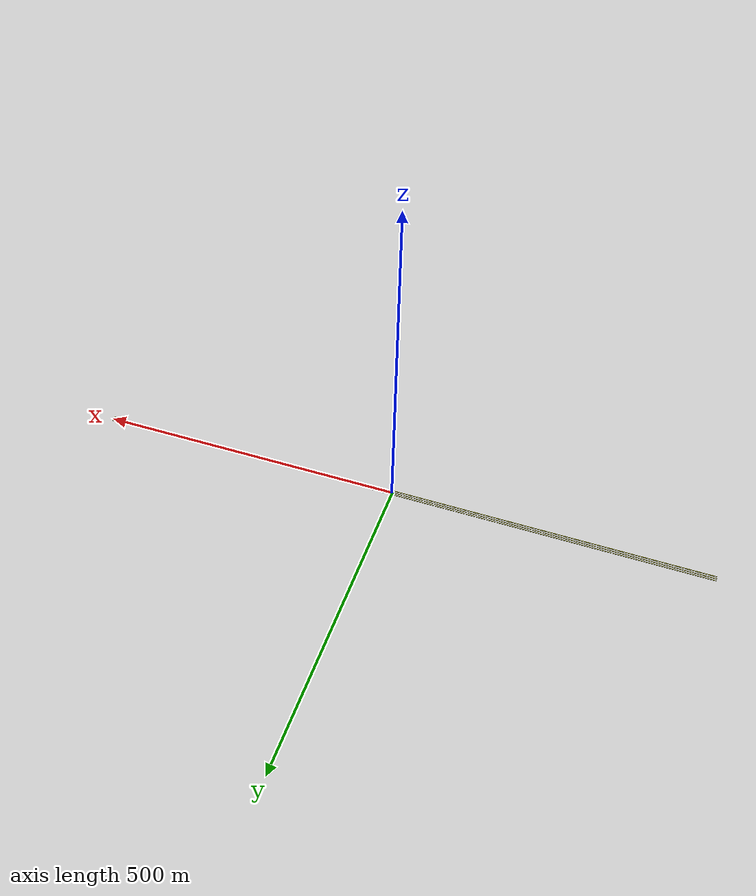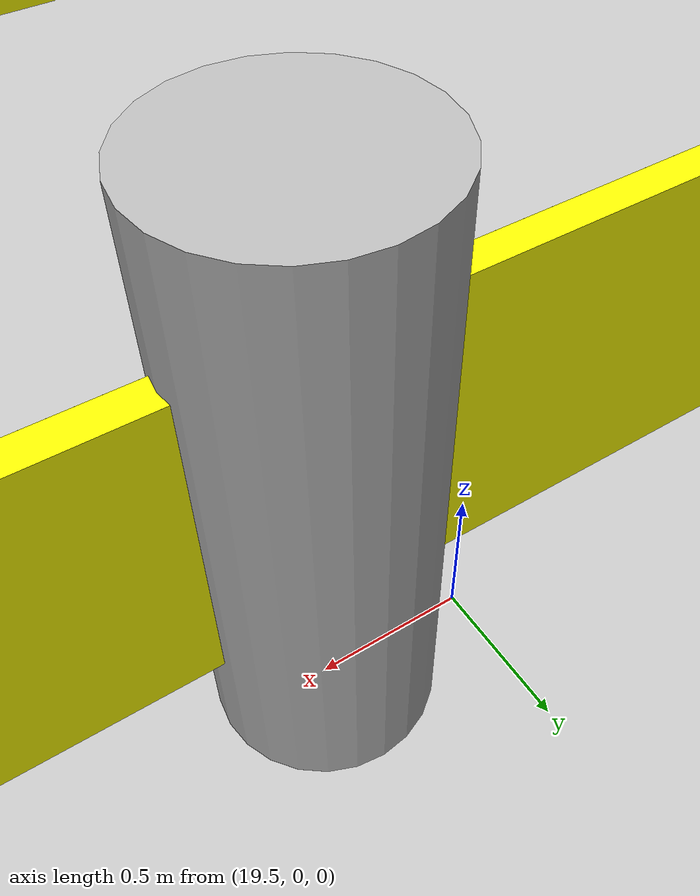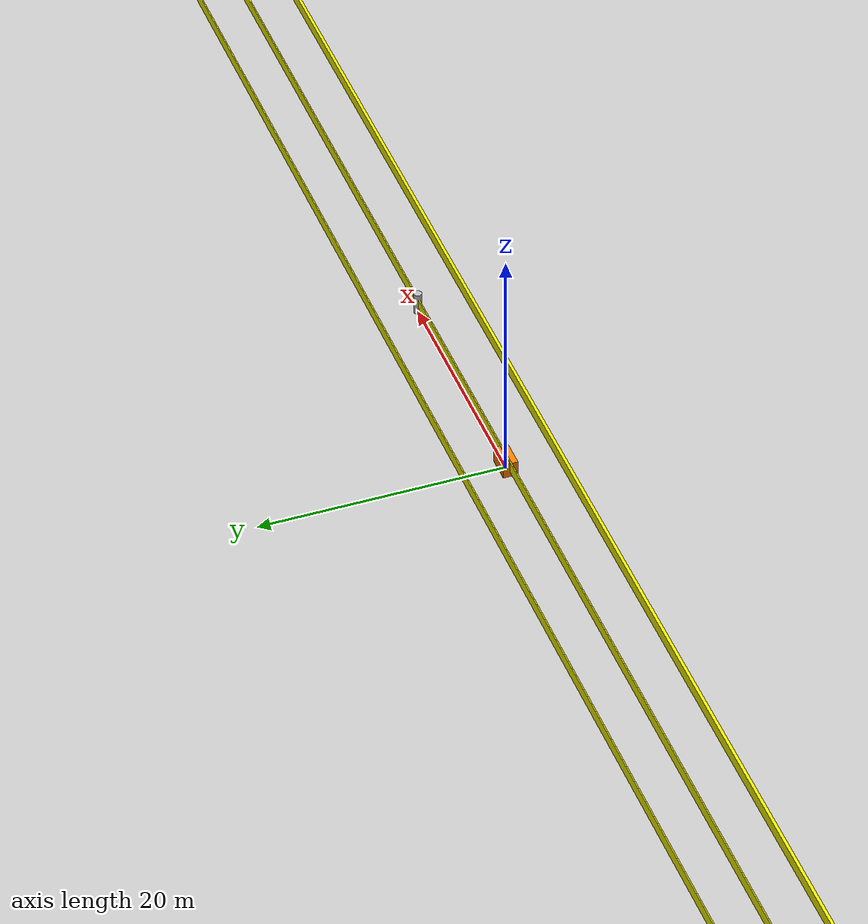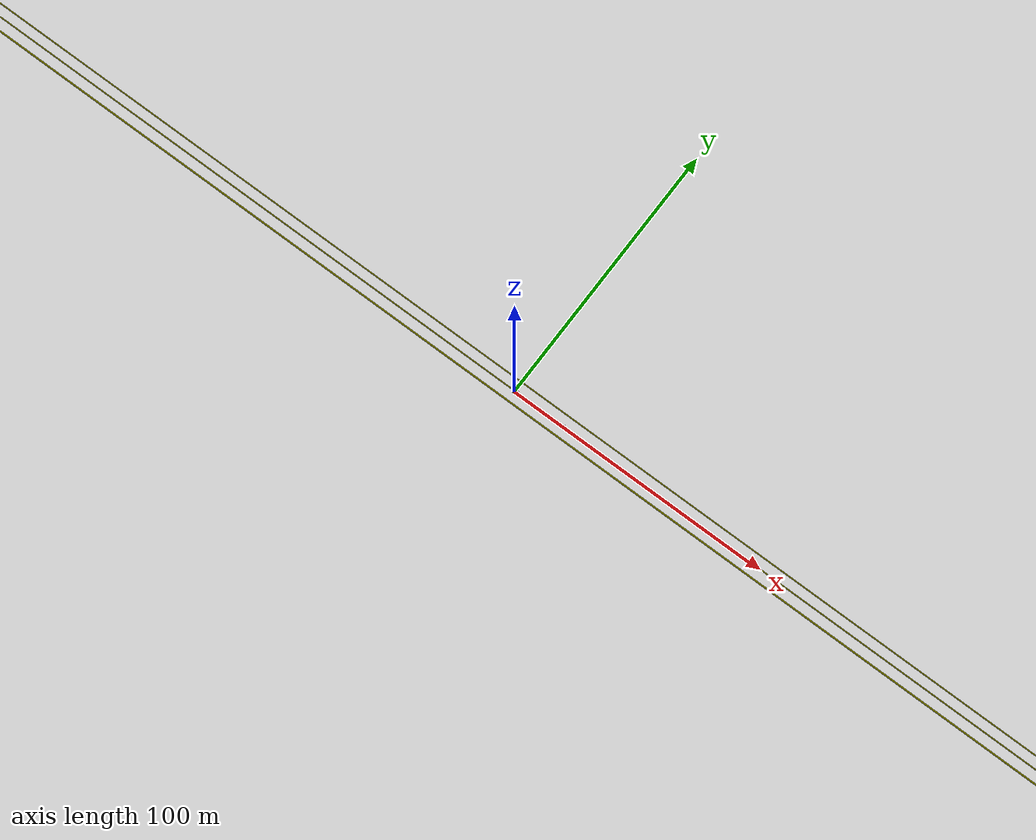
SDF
<?xml version="1.0" ?>
<sdf version='1.6'>
<world name='NCAPRealDataEnvironment'>

	 <!-- Model of the Robot -->
    <include>
      <uri>model://CarRealData</uri>
      <pose>0 0 0.65 0 0 0</pose>
    </include>

    <!-- Model of the cylinder cup  -->
    <model name="Pedestrian">
      <link name='PedestrianLink'>
          <pose>20 0 0.93 0 -0 0</pose>
          <collision name='PedCollision'>
            <geometry>
              <cylinder>
                <radius>0.34</radius>
                <length>1.86</length>
              </cylinder>
            </geometry>
          </collision>
          <visual name='PedCollision'>
            <geometry>
              <cylinder>
                <radius>0.34</radius>
                <length>1.86</length>
              </cylinder>
            </geometry>
          </visual>
      </link>
    </model>

     <!-- Model of the cylinder cup  -->
    <model name="GoalStrip">
      <link name='GoalStrip'>
          <pose>0 -4 0.93 0 -0 0</pose>
          <visual name='GoalStripVisual'>
            <geometry>
              <box>
                <size>1000 0.25 1</size>
              </box>
            </geometry>
            <material>
              <ambient> 1 1 0 1 </ambient>
            </material>
          </visual>
      </link>

      <link name='MidLane'>
          <pose>0 0 0.93 0 -0 0</pose>
          <visual name='MidLaneVisual'>
            <geometry>
              <box>
                <size>1000 0.1 1</size>
              </box>
            </geometry>
            <material>
              <ambient> 1 1 0 1 </ambient>
            </material>
          </visual>
      </link>

       <link name='StartingStrip'>
          <pose>0 3.75 0.93 0 -0 0</pose>
          <visual name='MidLaneVisual'>
            <geometry>
              <box>
                <size>1000 0.1 1</size>
              </box>
            </geometry>
            <material>
              <ambient> 1 1 0 1 </ambient>
            </material>
          </visual>
      </link>
    </model>

</world>
</sdf>

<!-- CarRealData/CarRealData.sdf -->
<sdf version='1.6'>
  <model name='CarRealData'>
    <link name="CarLink">
      <pose frame=''>0 0 0 0 0 0</pose>
      <collision name='CarLink_collision'>
        <geometry>
          <box>
            <size>2.2 1.2 1.3</size>
          </box>
        </geometry>
      </collision>
      <visual name='CarLink_visual'>
        <geometry>
          <box>
            <size>2.2 1.2 1.3</size>
          </box>
        </geometry>
        <material>
          <ambient>1.0 0.5019607843137254902 0 1.0</ambient>
        </material>
      </visual>
      <gravity>0</gravity>
      <self_collide>0</self_collide>
    </link>
  </model>
</sdf>
